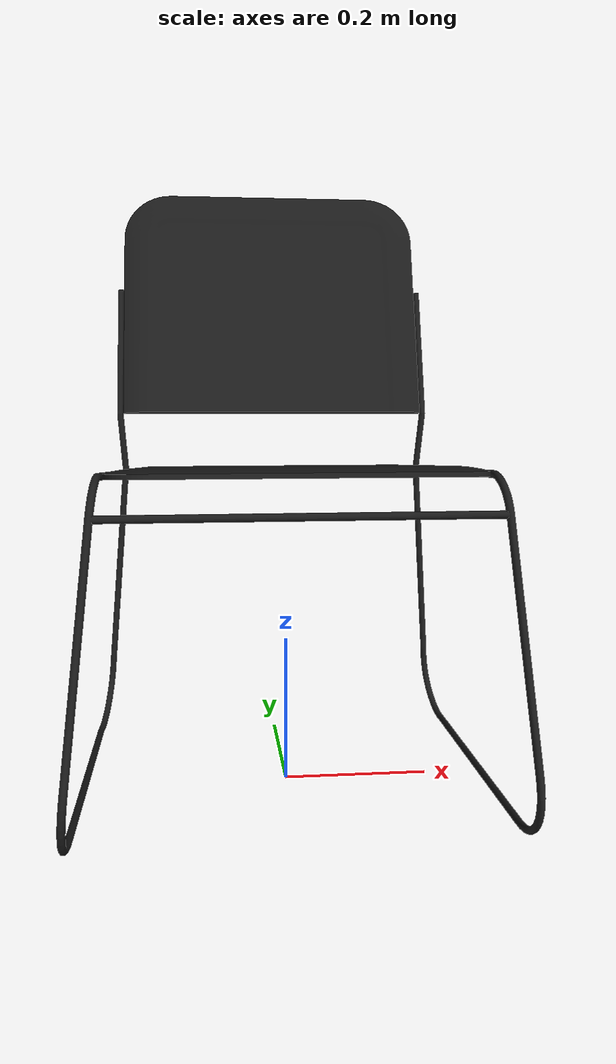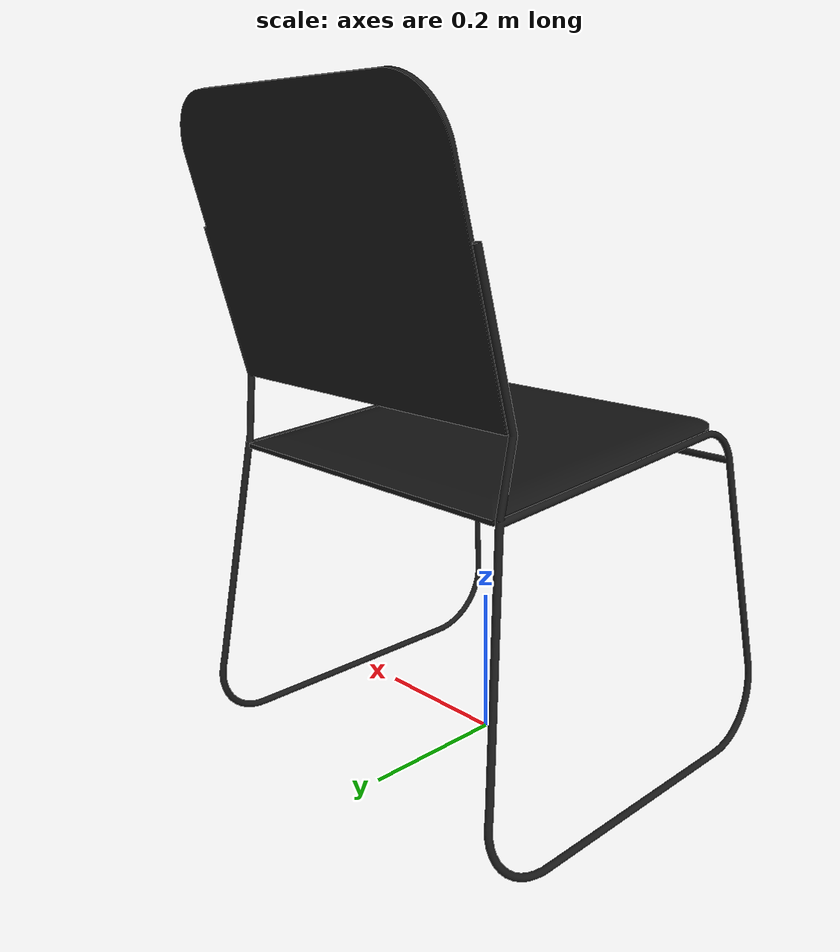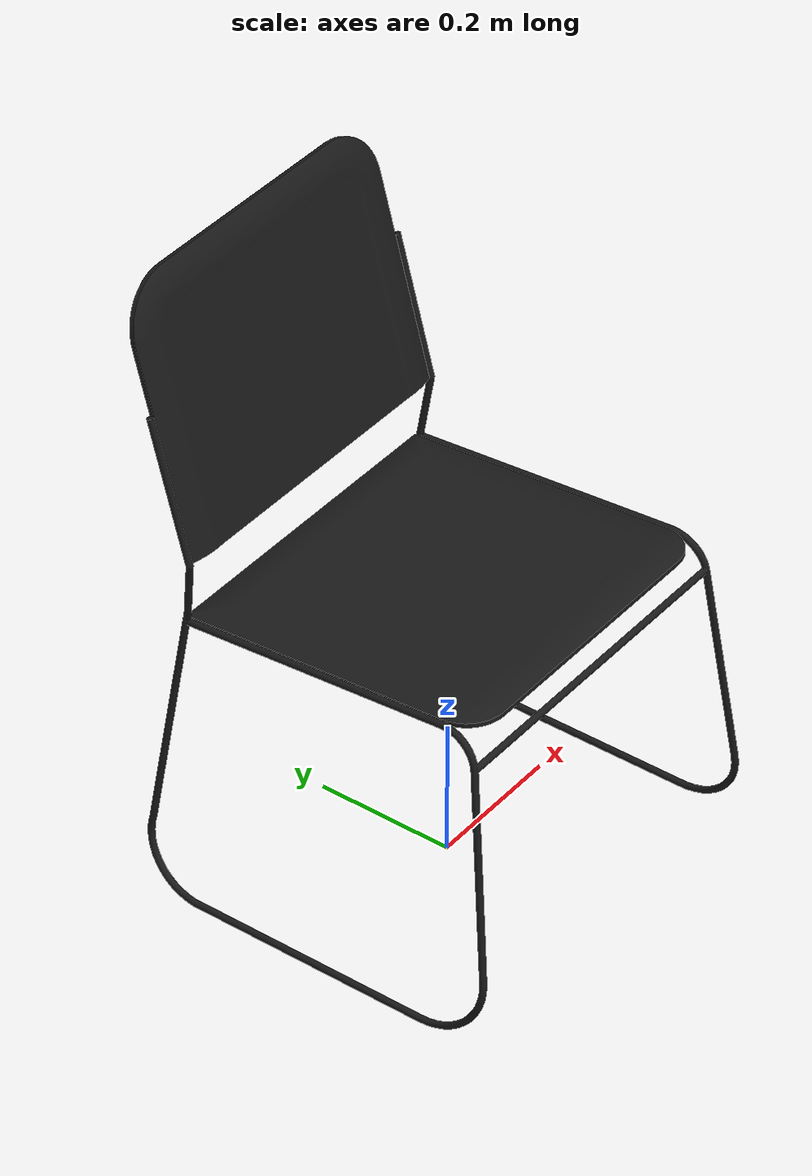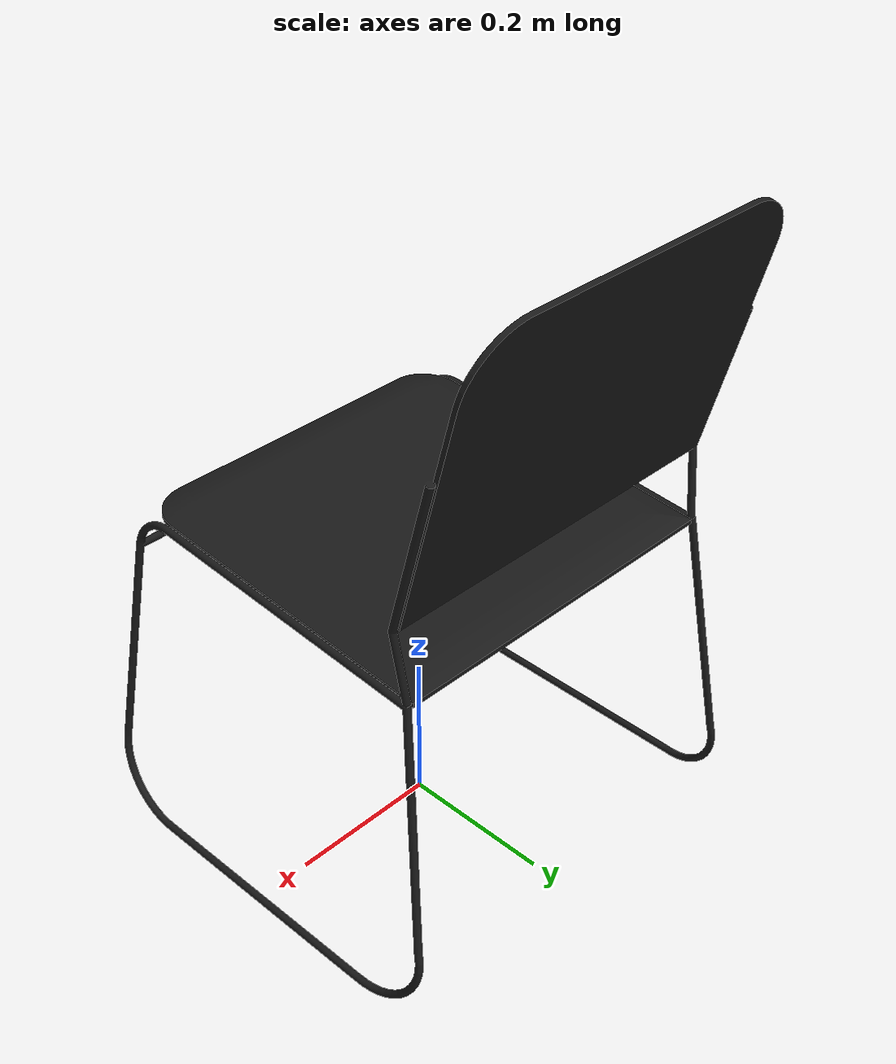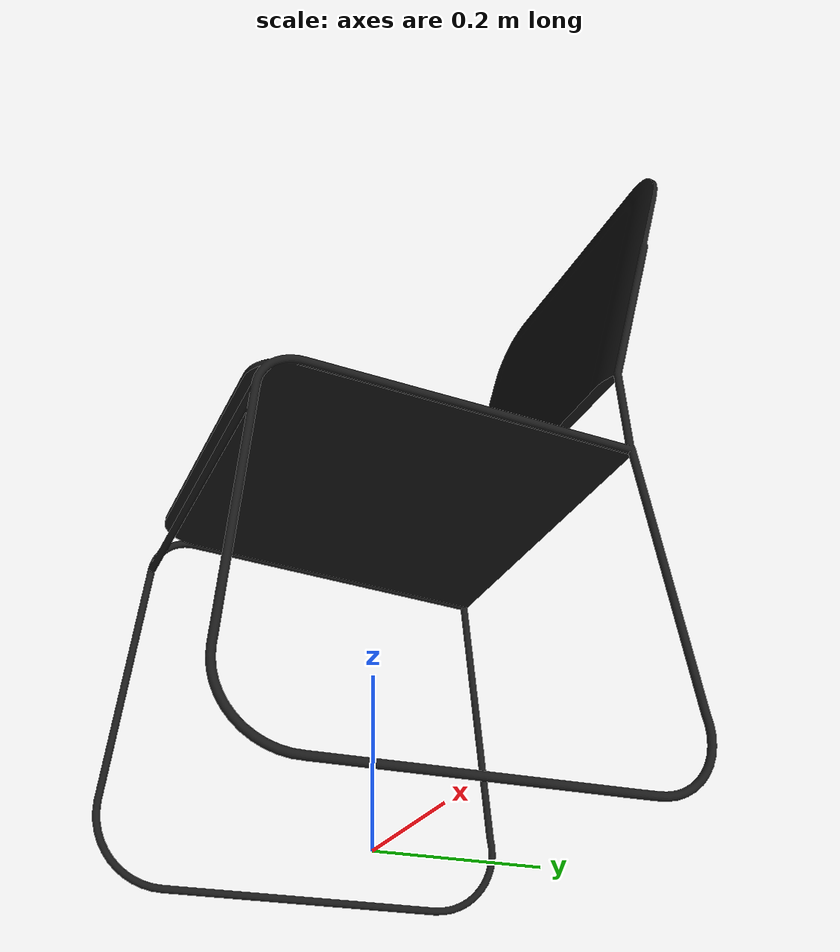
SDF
<?xml version='1.0'?>
<sdf version='1.6'>
  <model name='chair_3'>
    <link name='link_4'>
      <pose frame=''>-0.282457 -0.259387 0 0 -0 0</pose>
          <visual name='visual'>
        <pose frame=''>0 0 0 0 -0 0</pose>
        <geometry>
          <mesh>
            <uri>model://chair_3/meshes/model.dae</uri>
            <scale>1 1 1</scale>
          </mesh>
        </geometry>
        <material>
          <lighting>1</lighting>
          <ambient>0 0 0 1</ambient>
          <diffuse>0.1 0.1 0.1 1</diffuse>
          <specular>0.01 0.01 0.01 1</specular>
          <emissive>0 0 0 1</emissive>
        </material>
        <cast_shadows>1</cast_shadows>
        <transparency>0</transparency>
      </visual>
      <collision name='collision'>
        <laser_retro>0</laser_retro>
        <max_contacts>10</max_contacts>
        <pose frame=''>0 0 0 0 -0 0</pose>
        <geometry>
          <mesh>
            <uri>model://chair_3/meshes/model.dae</uri>
            <scale>1 1 1</scale>
          </mesh>
        </geometry>
      </collision>
    </link>
    <static>1</static>
    <allow_auto_disable>1</allow_auto_disable>
  </model>
</sdf>
